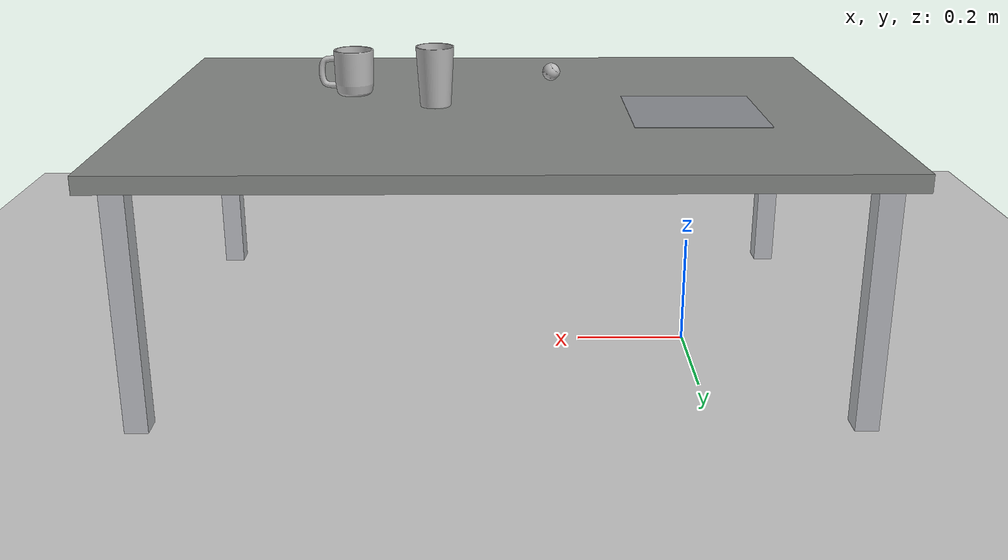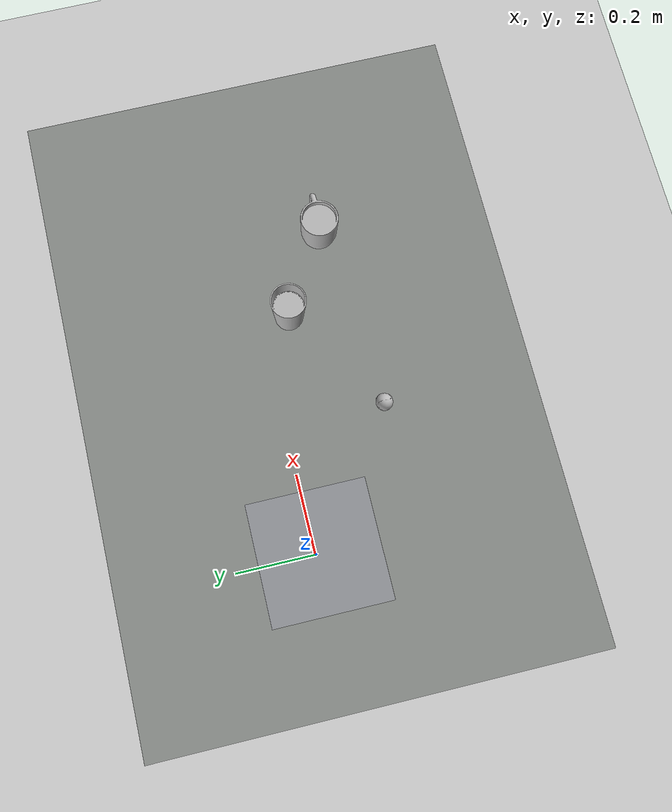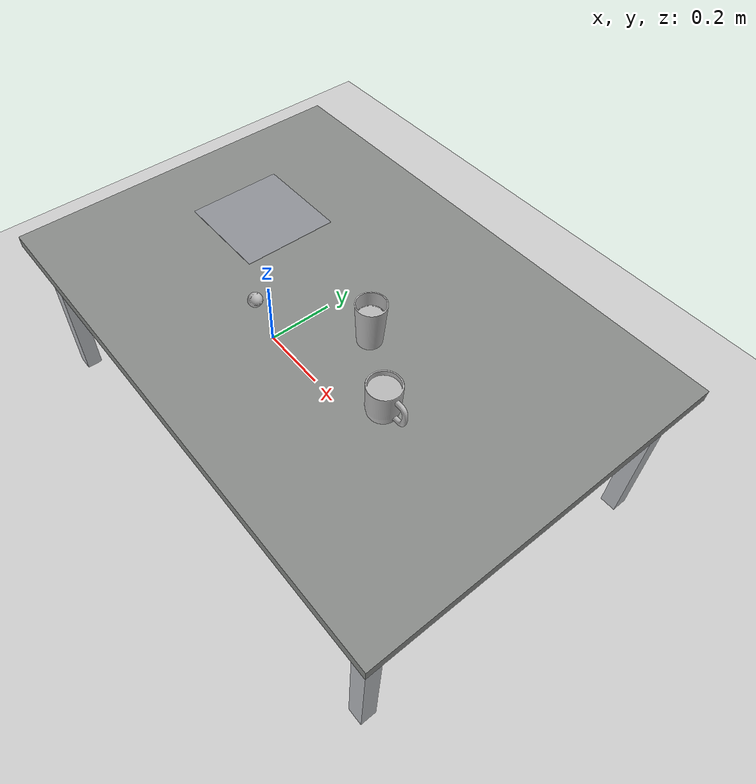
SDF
<sdf version="1.6">
 <world name="tabletop">
  <physics type="ode">
   <max_step_size>0.001</max_step_size>
   <real_time_factor>1</real_time_factor>
   <real_time_update_rate>1000</real_time_update_rate>
  </physics>
  <plugin name="gazebo_ros_factory" filename="libgazebo_ros_factory.so"/>
  <plugin name="gazebo_ros_state" filename="libgazebo_ros_state.so"/>
  <light name="sun" type="directional">
   <pose>0 0 10 0 0 0</pose>
   <diffuse>0.8 0.8 0.8 1</diffuse>
   <specular>0.2 0.2 0.2 1</specular>
   <attenuation>
    <range>1000</range>
    <constant>0.9</constant>
    <linear>0.01</linear>
    <quadratic>0.001</quadratic>
   </attenuation>
   <direction>-0.5 0.1 -0.9</direction>
  </light>
  <model name="ground_plane">
   <static>true</static>
   <link name="link">
    <collision name="collision">
     <geometry><plane><normal>0 0 1</normal><size>100 100</size></plane></geometry>
    </collision>
    <visual name="visual">
     <geometry><plane><normal>0 0 1</normal><size>100 100</size></plane></geometry>
     <material>
      <script><uri>file://media/materials/scripts/gazebo.material</uri><name>Gazebo/Grey</name></script>
     </material>
    </visual>
   </link>
  </model>
  <model name="table">
   <static>true</static>
   <pose>0.35 -0.05 0 0 0 0</pose>
   <link name="link">
    <inertial>
     <mass>20.0</mass>
     <inertia><ixx>1.0</ixx><ixy>0</ixy><ixz>0</ixz><iyy>1.0</iyy><iyz>0</iyz><izz>1.0</izz></inertia>
    </inertial>
    <collision name="collision">
     <pose>0 0 0.435 0 0 0</pose>
     <geometry><box><size>1.3 0.9 0.03</size></box></geometry>
    </collision>
    <visual name="visual">
     <pose>0 0 0.435 0 0 0</pose>
     <geometry><box><size>1.3 0.9 0.03</size></box></geometry>
     <material>
      <ambient>0.53 0.54 0.53 1</ambient>
      <diffuse>0.53 0.54 0.53 1</diffuse>
      <specular>0.1 0.1 0.1 1</specular>
     </material>
    </visual>
    <collision name="leg_fl_collision">
     <pose>0.6 0.4 0.21 0 0 0</pose>
     <geometry><box><size>0.04 0.04 0.42</size></box></geometry>
    </collision>
    <visual name="leg_fl">
     <pose>0.6 0.4 0.21 0 0 0</pose>
     <geometry><box><size>0.04 0.04 0.42</size></box></geometry>
     <material><ambient>0.73 0.74 0.76 1</ambient><diffuse>0.73 0.74 0.76 1</diffuse></material>
    </visual>
    <collision name="leg_fr_collision">
     <pose>0.6 -0.4 0.21 0 0 0</pose>
     <geometry><box><size>0.04 0.04 0.42</size></box></geometry>
    </collision>
    <visual name="leg_fr">
     <pose>0.6 -0.4 0.21 0 0 0</pose>
     <geometry><box><size>0.04 0.04 0.42</size></box></geometry>
     <material><ambient>0.73 0.74 0.76 1</ambient><diffuse>0.73 0.74 0.76 1</diffuse></material>
    </visual>
    <collision name="leg_bl_collision">
     <pose>-0.6 0.4 0.21 0 0 0</pose>
     <geometry><box><size>0.04 0.04 0.42</size></box></geometry>
    </collision>
    <visual name="leg_bl">
     <pose>-0.6 0.4 0.21 0 0 0</pose>
     <geometry><box><size>0.04 0.04 0.42</size></box></geometry>
     <material><ambient>0.73 0.74 0.76 1</ambient><diffuse>0.73 0.74 0.76 1</diffuse></material>
    </visual>
    <collision name="leg_br_collision">
     <pose>-0.6 -0.4 0.21 0 0 0</pose>
     <geometry><box><size>0.04 0.04 0.42</size></box></geometry>
    </collision>
    <visual name="leg_br">
     <pose>-0.6 -0.4 0.21 0 0 0</pose>
     <geometry><box><size>0.04 0.04 0.42</size></box></geometry>
     <material><ambient>0.73 0.74 0.76 1</ambient><diffuse>0.73 0.74 0.76 1</diffuse></material>
    </visual>
    <visual name="mount_plate">
     <pose>-0.35 0.05 0.448 0 0 0</pose>
     <geometry><box><size>0.24 0.24 0.006</size></box></geometry>
     <material><ambient>0.56 0.57 0.59 1</ambient><diffuse>0.56 0.57 0.59 1</diffuse></material>
    </visual>
   </link>
  </model>
  <include><uri>model://mug</uri><name>mug</name><pose>0.6300 -0.1500 0.4925 0 0 0.0000</pose></include>
  <include><uri>model://glass</uri><name>glass</name><pose>0.4700 -0.0500 0.5050 0 0 0.0000</pose></include>
  <include>
   <uri>model://tennis_ball</uri>
   <name>tennis_ball</name>
   <pose>0.2500 -0.1900 0.4835 0 0 0.0000</pose>
  </include>
  <model name="overhead_camera">
   <static>true</static>
   <pose>0.981 -0.05 1.351 0 0.9599 3.1416</pose>
   <link name="camera_link">
    <sensor name="camera" type="depth">
     <always_on>true</always_on>
     <update_rate>10</update_rate>
     <camera>
      <horizontal_fov>1.047</horizontal_fov>
      <image><width>640</width><height>480</height><format>R8G8B8</format></image>
      <clip><near>0.1</near><far>5.0</far></clip>
     </camera>
     <plugin name="camera_controller" filename="libgazebo_ros_camera.so">
      <ros>
       <remapping>camera/image_raw:=/camera/color/image_raw</remapping>
       <remapping>camera/camera_info:=/camera/color/camera_info</remapping>
       <remapping>camera/depth/image_raw:=/camera/aligned_depth_to_color/image_raw</remapping>
      </ros>
      <camera_name>camera</camera_name>
      <frame_name>camera_color_optical_frame</frame_name>
      <min_depth>0.1</min_depth>
      <max_depth>5.0</max_depth>
     </plugin>
    </sensor>
   </link>
  </model>
 </world>
</sdf>

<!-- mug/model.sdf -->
<sdf version="1.6">
  <model name="fridge">
   <static>true</static>
    <link name="body">
      <pose>0 0 0 0 0 0</pose>

      <visual name="visual">
        <geometry>
          <mesh>
            <uri>model://models/mug/meshes/mug.dae</uri>
          </mesh>
        </geometry>
      </visual>

      <collision name="collision">
        <geometry>
          <mesh>
            <uri>model://models/mug/meshes/mug.dae</uri>
          </mesh>
        </geometry>
      </collision>

    </link>
  </model>
</sdf>

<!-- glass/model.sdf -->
<sdf version="1.7">
	<model name="glass">
		<link name="base">
			<visual name="glass_visual">
				<pose>0 0 0 0 0 0</pose>
				<geometry>
					<mesh>
						<scale>1 1 1</scale>
						<uri>meshes/glass.obj</uri>
					</mesh>
				</geometry>
			</visual>
		</link>
	</model>
</sdf>

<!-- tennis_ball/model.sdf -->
<sdf version="1.5">
  <model name="tennis_ball">
    <link name="link">
      <inertial>
        <pose>0 0 0 0 0 0</pose>
        <mass>0.002</mass>
        <inertia>
          <ixx>3.41333333333e-07</ixx>
          <ixy>0</ixy>
          <ixz>0</ixz>
          <iyy>3.41333333333e-07</iyy>
          <iyz>0</iyz>
          <izz>3.41333333333e-07</izz>
        </inertia>
      </inertial>

      <collision name="tennis_ball_colision">
        <pose>0 0 0 0 0 0</pose>
        <geometry>
          <mesh>
            <uri>model://tennis_ball/meshes/tennis_ball.dae</uri>
            <scale>0.5 0.5 0.5</scale>
          </mesh>
        </geometry>
        <surface>
          <friction>
            <ode>
              <mu>0.01</mu>
              <mu2>0.01</mu2>
            </ode>
          </friction>
          <contact>
            <ode>
              <kp>10000000.0</kp>
              <kd>10000000.0</kd>
              <min_depth>0.001</min_depth>
              <max_vel>1.1</max_vel>
            </ode>
          </contact>
        </surface>
      </collision>

      <visual name="tennis_ball_visual">
        <pose>0 0 0 0 0 0</pose>
        <geometry>
          <mesh>
            <uri>model://tennis_ball/meshes/tennis_ball.dae</uri>
            <scale>0.5 0.5 0.5</scale>
          </mesh>
        </geometry>
      </visual>
    </link>
  </model>
</sdf>
